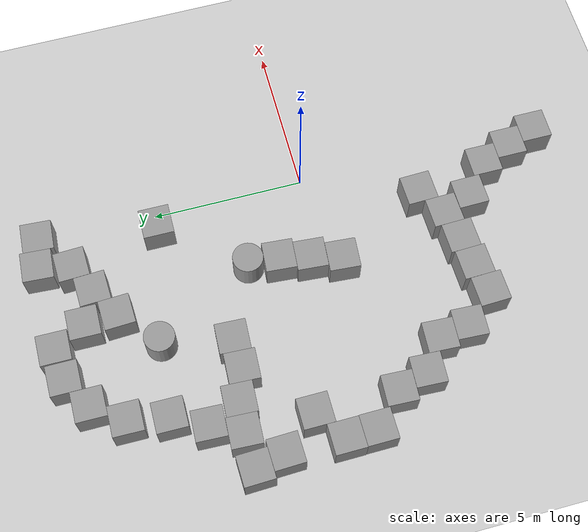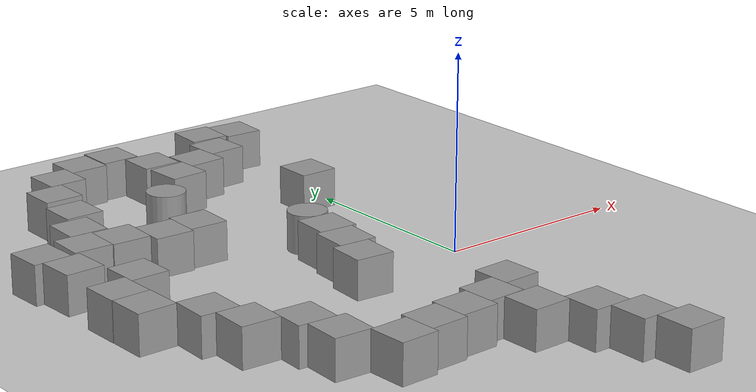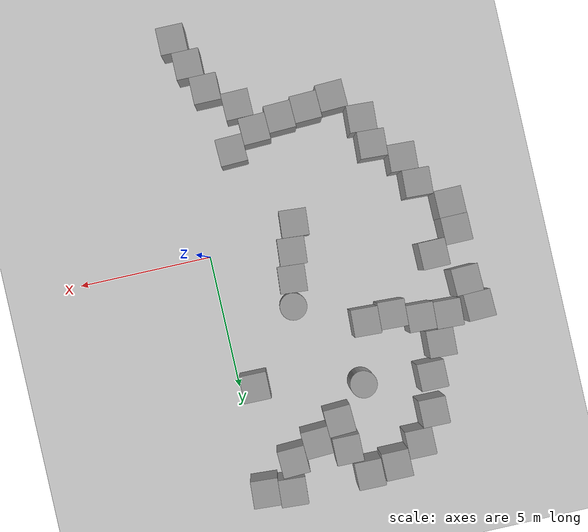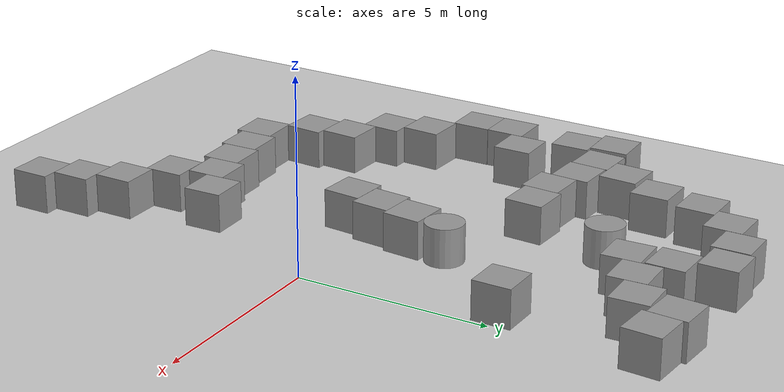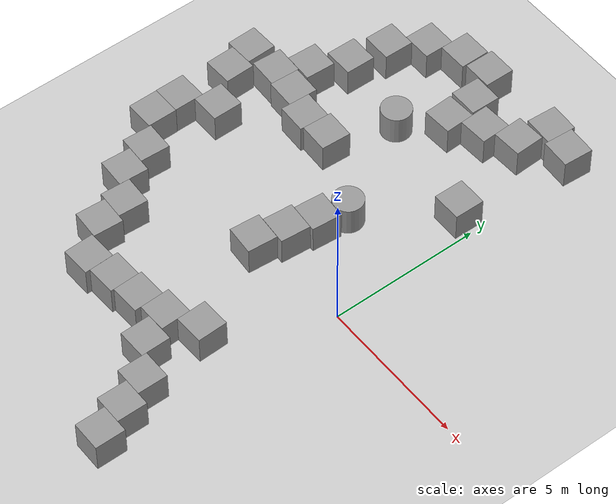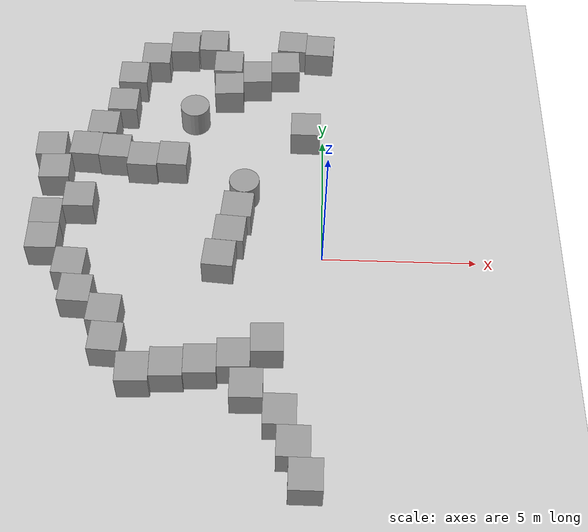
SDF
<sdf version="1.6">
 <world name="default">
  <model name="ground_plane">
   <static>1</static>
   <link name="link">
    <collision name="collision">
     <geometry><plane><normal>0 0 1</normal><size>100 100</size></plane></geometry>
     <surface>
      <contact><collide_bitmask>65535</collide_bitmask></contact>
      <friction><ode><mu>100</mu><mu2>50</mu2></ode></friction>
     </surface>
    </collision>
    <visual name="visual">
     <cast_shadows>0</cast_shadows>
     <geometry><plane><normal>0 0 1</normal><size>100 100</size></plane></geometry>
     <material>
      <script><uri>file://media/materials/scripts/gazebo.material</uri><name>Gazebo/Grey</name></script>
     </material>
    </visual>
   </link>
  </model>
  <model name="unit_cylinder">
   <pose>-2.61932 2.44696 0.499993 -3e-06 4e-06 0.026379</pose>
   <link name="link">
    <inertial>
     <mass>1</mass>
     <inertia><ixx>0.145833</ixx><ixy>0</ixy><ixz>0</ixz><iyy>0.145833</iyy><iyz>0</iyz><izz>0.125</izz></inertia>
    </inertial>
    <collision name="collision">
     <geometry><cylinder><radius>0.5</radius><length>1</length></cylinder></geometry>
    </collision>
    <visual name="visual">
     <geometry><cylinder><radius>0.5</radius><length>1</length></cylinder></geometry>
     <material>
      <script><name>Gazebo/Grey</name><uri>file://media/materials/scripts/gazebo.material</uri></script>
     </material>
    </visual>
   </link>
  </model>
  <model name="unit_cylinder_1">
   <pose>-4.48559 5.76166 0.499994 -3e-06 -1e-06 -0</pose>
   <link name="link">
    <inertial>
     <mass>1</mass>
     <inertia><ixx>0.145833</ixx><ixy>0</ixy><ixz>0</ixz><iyy>0.145833</iyy><iyz>0</iyz><izz>0.125</izz></inertia>
    </inertial>
    <collision name="collision">
     <geometry><cylinder><radius>0.5</radius><length>1</length></cylinder></geometry>
    </collision>
    <visual name="visual">
     <geometry><cylinder><radius>0.5</radius><length>1</length></cylinder></geometry>
     <material>
      <script><name>Gazebo/Grey</name><uri>file://media/materials/scripts/gazebo.material</uri></script>
     </material>
    </visual>
   </link>
  </model>
  <model name="unit_box">
   <pose>-3.305 -0.512108 0.5 0 -0 -0.077037</pose>
   <link name="link">
    <inertial>
     <mass>1</mass>
     <inertia>
      <ixx>0.166667</ixx>
      <ixy>0</ixy>
      <ixz>0</ixz>
      <iyy>0.166667</iyy>
      <iyz>0</iyz>
      <izz>0.166667</izz>
     </inertia>
    </inertial>
    <collision name="collision"><geometry><box><size>1 1 1</size></box></geometry></collision>
    <visual name="visual">
     <geometry><box><size>1 1 1</size></box></geometry>
     <material>
      <script><name>Gazebo/Grey</name><uri>file://media/materials/scripts/gazebo.material</uri></script>
     </material>
    </visual>
   </link>
  </model>
  <model name="unit_box_0">
   <pose>-1.67088 -3.58781 0.499995 -0 1e-05 0.030168</pose>
   <link name="link">
    <inertial>
     <mass>1</mass>
     <inertia>
      <ixx>0.166667</ixx>
      <ixy>0</ixy>
      <ixz>0</ixz>
      <iyy>0.166667</iyy>
      <iyz>0</iyz>
      <izz>0.166667</izz>
     </inertia>
    </inertial>
    <collision name="collision"><geometry><box><size>1 1 1</size></box></geometry></collision>
    <visual name="visual">
     <geometry><box><size>1 1 1</size></box></geometry>
     <material>
      <script><name>Gazebo/Grey</name><uri>file://media/materials/scripts/gazebo.material</uri></script>
     </material>
    </visual>
   </link>
  </model>
  <model name="unit_box_3">
   <pose>-2.65414 -4.15789 0.499995 -1e-05 -0 0.030362</pose>
   <link name="link">
    <inertial>
     <mass>1</mass>
     <inertia>
      <ixx>0.166667</ixx>
      <ixy>0</ixy>
      <ixz>0</ixz>
      <iyy>0.166667</iyy>
      <iyz>0</iyz>
      <izz>0.166667</izz>
     </inertia>
    </inertial>
    <collision name="collision"><geometry><box><size>1 1 1</size></box></geometry></collision>
    <visual name="visual">
     <geometry><box><size>1 1 1</size></box></geometry>
     <material>
      <script><name>Gazebo/Grey</name><uri>file://media/materials/scripts/gazebo.material</uri></script>
     </material>
    </visual>
   </link>
  </model>
  <model name="unit_box_4">
   <pose>-2.2346 -5.1573 0.499995 1e-05 -0 0.013394</pose>
   <link name="link">
    <inertial>
     <mass>1</mass>
     <inertia>
      <ixx>0.166667</ixx>
      <ixy>0</ixy>
      <ixz>0</ixz>
      <iyy>0.166667</iyy>
      <iyz>0</iyz>
      <izz>0.166667</izz>
     </inertia>
    </inertial>
    <collision name="collision"><geometry><box><size>1 1 1</size></box></geometry></collision>
    <visual name="visual">
     <geometry><box><size>1 1 1</size></box></geometry>
     <material>
      <script><name>Gazebo/Grey</name><uri>file://media/materials/scripts/gazebo.material</uri></script>
     </material>
    </visual>
   </link>
  </model>
  <model name="unit_box_5">
   <pose>-1.22904 -5.98442 0.499995 -1e-05 -0 -0.003304</pose>
   <link name="link">
    <inertial>
     <mass>1</mass>
     <inertia>
      <ixx>0.166667</ixx>
      <ixy>0</ixy>
      <ixz>0</ixz>
      <iyy>0.166667</iyy>
      <iyz>0</iyz>
      <izz>0.166667</izz>
     </inertia>
    </inertial>
    <collision name="collision"><geometry><box><size>1 1 1</size></box></geometry></collision>
    <visual name="visual">
     <geometry><box><size>1 1 1</size></box></geometry>
     <material>
      <script><name>Gazebo/Grey</name><uri>file://media/materials/scripts/gazebo.material</uri></script>
     </material>
    </visual>
   </link>
  </model>
  <model name="unit_box_5_clone">
   <pose>-0.809884 -6.98581 0.499995 -1e-05 -0 -0.003304</pose>
   <link name="link">
    <inertial>
     <mass>1</mass>
     <inertia>
      <ixx>0.166667</ixx>
      <ixy>0</ixy>
      <ixz>0</ixz>
      <iyy>0.166667</iyy>
      <iyz>0</iyz>
      <izz>0.166667</izz>
     </inertia>
    </inertial>
    <collision name="collision"><geometry><box><size>1 1 1</size></box></geometry></collision>
    <visual name="visual">
     <geometry><box><size>1 1 1</size></box></geometry>
     <material>
      <script><name>Gazebo/Grey</name><uri>file://media/materials/scripts/gazebo.material</uri></script>
     </material>
    </visual>
   </link>
  </model>
  <model name="unit_box_5_clone_0">
   <pose>-0.445428 -7.98703 0.499995 -1e-05 -0 -0.003317</pose>
   <link name="link">
    <inertial>
     <mass>1</mass>
     <inertia>
      <ixx>0.166667</ixx>
      <ixy>0</ixy>
      <ixz>0</ixz>
      <iyy>0.166667</iyy>
      <iyz>0</iyz>
      <izz>0.166667</izz>
     </inertia>
    </inertial>
    <collision name="collision"><geometry><box><size>1 1 1</size></box></geometry></collision>
    <visual name="visual">
     <geometry><box><size>1 1 1</size></box></geometry>
     <material>
      <script><name>Gazebo/Grey</name><uri>file://media/materials/scripts/gazebo.material</uri></script>
     </material>
    </visual>
   </link>
  </model>
  <model name="unit_box_5_clone_34">
   <pose>-0.146527 8.83779 0.499995 0 1e-05 -0.063294</pose>
   <link name="link">
    <inertial>
     <mass>1</mass>
     <inertia>
      <ixx>0.166667</ixx>
      <ixy>0</ixy>
      <ixz>0</ixz>
      <iyy>0.166667</iyy>
      <iyz>0</iyz>
      <izz>0.166667</izz>
     </inertia>
    </inertial>
    <collision name="collision"><geometry><box><size>1 1 1</size></box></geometry></collision>
    <visual name="visual">
     <geometry><box><size>1 1 1</size></box></geometry>
     <material>
      <script><name>Gazebo/Grey</name><uri>file://media/materials/scripts/gazebo.material</uri></script>
     </material>
    </visual>
   </link>
  </model>
  <model name="unit_box_5_clone_35">
   <pose>-1.13722 9.01639 0.5 -0 -0 -0.063293</pose>
   <link name="link">
    <inertial>
     <mass>1</mass>
     <inertia>
      <ixx>0.166667</ixx>
      <ixy>0</ixy>
      <ixz>0</ixz>
      <iyy>0.166667</iyy>
      <iyz>0</iyz>
      <izz>0.166667</izz>
     </inertia>
    </inertial>
    <collision name="collision"><geometry><box><size>1 1 1</size></box></geometry></collision>
    <visual name="visual">
     <geometry><box><size>1 1 1</size></box></geometry>
     <material>
      <script><name>Gazebo/Grey</name><uri>file://media/materials/scripts/gazebo.material</uri></script>
     </material>
    </visual>
   </link>
  </model>
  <model name="unit_box_5_clone_36">
   <pose>-1.38448 7.9517 0.499995 -0 -1e-05 0.038517</pose>
   <link name="link">
    <inertial>
     <mass>1</mass>
     <inertia>
      <ixx>0.166667</ixx>
      <ixy>0</ixy>
      <ixz>0</ixz>
      <iyy>0.166667</iyy>
      <iyz>0</iyz>
      <izz>0.166667</izz>
     </inertia>
    </inertial>
    <collision name="collision"><geometry><box><size>1 1 1</size></box></geometry></collision>
    <visual name="visual">
     <geometry><box><size>1 1 1</size></box></geometry>
     <material>
      <script><name>Gazebo/Grey</name><uri>file://media/materials/scripts/gazebo.material</uri></script>
     </material>
    </visual>
   </link>
  </model>
  <model name="unit_box_5_clone_37">
   <pose>-3.41344 7.95879 0.499995 0 1e-05 -0.013853</pose>
   <link name="link">
    <inertial>
     <mass>1</mass>
     <inertia>
      <ixx>0.166667</ixx>
      <ixy>0</ixy>
      <ixz>0</ixz>
      <iyy>0.166667</iyy>
      <iyz>0</iyz>
      <izz>0.166667</izz>
     </inertia>
    </inertial>
    <collision name="collision"><geometry><box><size>1 1 1</size></box></geometry></collision>
    <visual name="visual">
     <geometry><box><size>1 1 1</size></box></geometry>
     <material>
      <script><name>Gazebo/Grey</name><uri>file://media/materials/scripts/gazebo.material</uri></script>
     </material>
    </visual>
   </link>
  </model>
  <model name="unit_box_5_clone_38">
   <pose>-4 9 0.499995 0 1e-05 -0.010235</pose>
   <link name="link">
    <inertial>
     <mass>1</mass>
     <inertia>
      <ixx>0.166667</ixx>
      <ixy>0</ixy>
      <ixz>0</ixz>
      <iyy>0.166667</iyy>
      <iyz>0</iyz>
      <izz>0.166667</izz>
     </inertia>
    </inertial>
    <collision name="collision"><geometry><box><size>1 1 1</size></box></geometry></collision>
    <visual name="visual">
     <geometry><box><size>1 1 1</size></box></geometry>
     <material>
      <script><name>Gazebo/Grey</name><uri>file://media/materials/scripts/gazebo.material</uri></script>
     </material>
    </visual>
   </link>
  </model>
  <model name="unit_box_5_clone_39">
   <pose>-5.0351 8.88465 0.499995 -1e-05 -0 -0.000593</pose>
   <link name="link">
    <inertial>
     <mass>1</mass>
     <inertia>
      <ixx>0.166667</ixx>
      <ixy>0</ixy>
      <ixz>0</ixz>
      <iyy>0.166667</iyy>
      <iyz>0</iyz>
      <izz>0.166667</izz>
     </inertia>
    </inertial>
    <collision name="collision"><geometry><box><size>1 1 1</size></box></geometry></collision>
    <visual name="visual">
     <geometry><box><size>1 1 1</size></box></geometry>
     <material>
      <script><name>Gazebo/Grey</name><uri>file://media/materials/scripts/gazebo.material</uri></script>
     </material>
    </visual>
   </link>
  </model>
  <model name="unit_box_5_clone_40">
   <pose>-2.3666 7.46249 0.499995 1e-05 -0 0.042615</pose>
   <link name="link">
    <inertial>
     <mass>1</mass>
     <inertia>
      <ixx>0.166667</ixx>
      <ixy>0</ixy>
      <ixz>0</ixz>
      <iyy>0.166667</iyy>
      <iyz>0</iyz>
      <izz>0.166667</izz>
     </inertia>
    </inertial>
    <collision name="collision"><geometry><box><size>1 1 1</size></box></geometry></collision>
    <visual name="visual">
     <geometry><box><size>1 1 1</size></box></geometry>
     <material>
      <script><name>Gazebo/Grey</name><uri>file://media/materials/scripts/gazebo.material</uri></script>
     </material>
    </visual>
   </link>
  </model>
  <model name="unit_box_5_clone_41">
   <pose>-6.0388 8.29597 0.499995 -1e-05 0 -0.007253</pose>
   <link name="link">
    <inertial>
     <mass>1</mass>
     <inertia>
      <ixx>0.166667</ixx>
      <ixy>0</ixy>
      <ixz>0</ixz>
      <iyy>0.166667</iyy>
      <iyz>0</iyz>
      <izz>0.166667</izz>
     </inertia>
    </inertial>
    <collision name="collision"><geometry><box><size>1 1 1</size></box></geometry></collision>
    <visual name="visual">
     <geometry><box><size>1 1 1</size></box></geometry>
     <material>
      <script><name>Gazebo/Grey</name><uri>file://media/materials/scripts/gazebo.material</uri></script>
     </material>
    </visual>
   </link>
  </model>
  <model name="unit_box_5_clone_42">
   <pose>-6.76491 7.30246 0.499995 -1e-05 -0 -0.01302</pose>
   <link name="link">
    <inertial>
     <mass>1</mass>
     <inertia>
      <ixx>0.166667</ixx>
      <ixy>0</ixy>
      <ixz>0</ixz>
      <iyy>0.166667</iyy>
      <iyz>0</iyz>
      <izz>0.166667</izz>
     </inertia>
    </inertial>
    <collision name="collision"><geometry><box><size>1 1 1</size></box></geometry></collision>
    <visual name="visual">
     <geometry><box><size>1 1 1</size></box></geometry>
     <material>
      <script><name>Gazebo/Grey</name><uri>file://media/materials/scripts/gazebo.material</uri></script>
     </material>
    </visual>
   </link>
  </model>
  <model name="unit_box_5_clone_43">
   <pose>-7 6 0.499995 -1e-05 -0 -0.010235</pose>
   <link name="link">
    <inertial>
     <mass>1</mass>
     <inertia>
      <ixx>0.166667</ixx>
      <ixy>0</ixy>
      <ixz>0</ixz>
      <iyy>0.166667</iyy>
      <iyz>0</iyz>
      <izz>0.166667</izz>
     </inertia>
    </inertial>
    <collision name="collision"><geometry><box><size>1 1 1</size></box></geometry></collision>
    <visual name="visual">
     <geometry><box><size>1 1 1</size></box></geometry>
     <material>
      <script><name>Gazebo/Grey</name><uri>file://media/materials/scripts/gazebo.material</uri></script>
     </material>
    </visual>
   </link>
  </model>
  <model name="unit_box_5_clone_44">
   <pose>-3.64764 -4.39036 0.499995 1e-05 -0 0.030698</pose>
   <link name="link">
    <inertial>
     <mass>1</mass>
     <inertia>
      <ixx>0.166667</ixx>
      <ixy>0</ixy>
      <ixz>0</ixz>
      <iyy>0.166667</iyy>
      <iyz>0</iyz>
      <izz>0.166667</izz>
     </inertia>
    </inertial>
    <collision name="collision"><geometry><box><size>1 1 1</size></box></geometry></collision>
    <visual name="visual">
     <geometry><box><size>1 1 1</size></box></geometry>
     <material>
      <script><name>Gazebo/Grey</name><uri>file://media/materials/scripts/gazebo.material</uri></script>
     </material>
    </visual>
   </link>
  </model>
  <model name="unit_box_5_clone_45">
   <pose>-4.64418 -4.52608 0.499995 -0 1e-05 0.03128</pose>
   <link name="link">
    <inertial>
     <mass>1</mass>
     <inertia>
      <ixx>0.166667</ixx>
      <ixy>0</ixy>
      <ixz>0</ixz>
      <iyy>0.166667</iyy>
      <iyz>0</iyz>
      <izz>0.166667</izz>
     </inertia>
    </inertial>
    <collision name="collision"><geometry><box><size>1 1 1</size></box></geometry></collision>
    <visual name="visual">
     <geometry><box><size>1 1 1</size></box></geometry>
     <material>
      <script><name>Gazebo/Grey</name><uri>file://media/materials/scripts/gazebo.material</uri></script>
     </material>
    </visual>
   </link>
  </model>
  <model name="unit_box_5_clone_46">
   <pose>-5.63962 -4.71633 0.499995 0 1e-05 0.033913</pose>
   <link name="link">
    <inertial>
     <mass>1</mass>
     <inertia>
      <ixx>0.166667</ixx>
      <ixy>0</ixy>
      <ixz>0</ixz>
      <iyy>0.166667</iyy>
      <iyz>0</iyz>
      <izz>0.166667</izz>
     </inertia>
    </inertial>
    <collision name="collision"><geometry><box><size>1 1 1</size></box></geometry></collision>
    <visual name="visual">
     <geometry><box><size>1 1 1</size></box></geometry>
     <material>
      <script><name>Gazebo/Grey</name><uri>file://media/materials/scripts/gazebo.material</uri></script>
     </material>
    </visual>
   </link>
  </model>
  <model name="unit_box_5_clone_47">
   <pose>-6.54334 -3.70521 0.499995 0 1e-05 -0.052209</pose>
   <link name="link">
    <inertial>
     <mass>1</mass>
     <inertia>
      <ixx>0.166667</ixx>
      <ixy>0</ixy>
      <ixz>0</ixz>
      <iyy>0.166667</iyy>
      <iyz>0</iyz>
      <izz>0.166667</izz>
     </inertia>
    </inertial>
    <collision name="collision"><geometry><box><size>1 1 1</size></box></geometry></collision>
    <visual name="visual">
     <geometry><box><size>1 1 1</size></box></geometry>
     <material>
      <script><name>Gazebo/Grey</name><uri>file://media/materials/scripts/gazebo.material</uri></script>
     </material>
    </visual>
   </link>
  </model>
  <model name="unit_box_5_clone_48">
   <pose>-6.71244 -2.695 0.499995 0 1e-05 -0.052214</pose>
   <link name="link">
    <inertial>
     <mass>1</mass>
     <inertia>
      <ixx>0.166667</ixx>
      <ixy>0</ixy>
      <ixz>0</ixz>
      <iyy>0.166667</iyy>
      <iyz>0</iyz>
      <izz>0.166667</izz>
     </inertia>
    </inertial>
    <collision name="collision"><geometry><box><size>1 1 1</size></box></geometry></collision>
    <visual name="visual">
     <geometry><box><size>1 1 1</size></box></geometry>
     <material>
      <script><name>Gazebo/Grey</name><uri>file://media/materials/scripts/gazebo.material</uri></script>
     </material>
    </visual>
   </link>
  </model>
  <model name="unit_box_5_clone_49">
   <pose>-7.67929 -1.98572 0.499995 -0 1e-05 -0.047095</pose>
   <link name="link">
    <inertial>
     <mass>1</mass>
     <inertia>
      <ixx>0.166667</ixx>
      <ixy>0</ixy>
      <ixz>0</ixz>
      <iyy>0.166667</iyy>
      <iyz>0</iyz>
      <izz>0.166667</izz>
     </inertia>
    </inertial>
    <collision name="collision"><geometry><box><size>1 1 1</size></box></geometry></collision>
    <visual name="visual">
     <geometry><box><size>1 1 1</size></box></geometry>
     <material>
      <script><name>Gazebo/Grey</name><uri>file://media/materials/scripts/gazebo.material</uri></script>
     </material>
    </visual>
   </link>
  </model>
  <model name="unit_box_5_clone_50">
   <pose>-8.00686 -0.968851 0.499995 -0 -1e-05 -0.045101</pose>
   <link name="link">
    <inertial>
     <mass>1</mass>
     <inertia>
      <ixx>0.166667</ixx>
      <ixy>0</ixy>
      <ixz>0</ixz>
      <iyy>0.166667</iyy>
      <iyz>0</iyz>
      <izz>0.166667</izz>
     </inertia>
    </inertial>
    <collision name="collision"><geometry><box><size>1 1 1</size></box></geometry></collision>
    <visual name="visual">
     <geometry><box><size>1 1 1</size></box></geometry>
     <material>
      <script><name>Gazebo/Grey</name><uri>file://media/materials/scripts/gazebo.material</uri></script>
     </material>
    </visual>
   </link>
  </model>
  <model name="unit_box_5_clone_51">
   <pose>-9.00257 -0.00495 0.499995 1e-05 -0 0.005497</pose>
   <link name="link">
    <inertial>
     <mass>1</mass>
     <inertia>
      <ixx>0.166667</ixx>
      <ixy>0</ixy>
      <ixz>0</ixz>
      <iyy>0.166667</iyy>
      <iyz>0</iyz>
      <izz>0.166667</izz>
     </inertia>
    </inertial>
    <collision name="collision"><geometry><box><size>1 1 1</size></box></geometry></collision>
    <visual name="visual">
     <geometry><box><size>1 1 1</size></box></geometry>
     <material>
      <script><name>Gazebo/Grey</name><uri>file://media/materials/scripts/gazebo.material</uri></script>
     </material>
    </visual>
   </link>
  </model>
  <model name="unit_box_5_clone_52">
   <pose>-8.02199 1.70668 0.499995 1e-05 -0 0.00541</pose>
   <link name="link">
    <inertial>
     <mass>1</mass>
     <inertia>
      <ixx>0.166667</ixx>
      <ixy>0</ixy>
      <ixz>0</ixz>
      <iyy>0.166667</iyy>
      <iyz>0</iyz>
      <izz>0.166667</izz>
     </inertia>
    </inertial>
    <collision name="collision"><geometry><box><size>1 1 1</size></box></geometry></collision>
    <visual name="visual">
     <geometry><box><size>1 1 1</size></box></geometry>
     <material>
      <script><name>Gazebo/Grey</name><uri>file://media/materials/scripts/gazebo.material</uri></script>
     </material>
    </visual>
   </link>
  </model>
  <model name="unit_box_5_clone_53">
   <pose>-9.01825 0.995216 0.499995 0 1e-05 0.005385</pose>
   <link name="link">
    <inertial>
     <mass>1</mass>
     <inertia>
      <ixx>0.166667</ixx>
      <ixy>0</ixy>
      <ixz>0</ixz>
      <iyy>0.166667</iyy>
      <iyz>0</iyz>
      <izz>0.166667</izz>
     </inertia>
    </inertial>
    <collision name="collision"><geometry><box><size>1 1 1</size></box></geometry></collision>
    <visual name="visual">
     <geometry><box><size>1 1 1</size></box></geometry>
     <material>
      <script><name>Gazebo/Grey</name><uri>file://media/materials/scripts/gazebo.material</uri></script>
     </material>
    </visual>
   </link>
  </model>
  <model name="unit_box_5_clone_54">
   <pose>-8.98593 2.88655 0.499995 0 -1e-05 0.02963</pose>
   <link name="link">
    <inertial>
     <mass>1</mass>
     <inertia>
      <ixx>0.166667</ixx>
      <ixy>0</ixy>
      <ixz>0</ixz>
      <iyy>0.166667</iyy>
      <iyz>0</iyz>
      <izz>0.166667</izz>
     </inertia>
    </inertial>
    <collision name="collision"><geometry><box><size>1 1 1</size></box></geometry></collision>
    <visual name="visual">
     <geometry><box><size>1 1 1</size></box></geometry>
     <material>
      <script><name>Gazebo/Grey</name><uri>file://media/materials/scripts/gazebo.material</uri></script>
     </material>
    </visual>
   </link>
  </model>
  <model name="unit_box_5_clone_55">
   <pose>-8.06044 3.93073 0.499995 0 1e-05 -0.047137</pose>
   <link name="link">
    <inertial>
     <mass>1</mass>
     <inertia>
      <ixx>0.166667</ixx>
      <ixy>0</ixy>
      <ixz>0</ixz>
      <iyy>0.166667</iyy>
      <iyz>0</iyz>
      <izz>0.166667</izz>
     </inertia>
    </inertial>
    <collision name="collision"><geometry><box><size>1 1 1</size></box></geometry></collision>
    <visual name="visual">
     <geometry><box><size>1 1 1</size></box></geometry>
     <material>
      <script><name>Gazebo/Grey</name><uri>file://media/materials/scripts/gazebo.material</uri></script>
     </material>
    </visual>
   </link>
  </model>
  <model name="unit_box_5_clone_56">
   <pose>-7.57188 4.91165 0.499995 0 1e-05 -0.042014</pose>
   <link name="link">
    <inertial>
     <mass>1</mass>
     <inertia>
      <ixx>0.166667</ixx>
      <ixy>0</ixy>
      <ixz>0</ixz>
      <iyy>0.166667</iyy>
      <iyz>0</iyz>
      <izz>0.166667</izz>
     </inertia>
    </inertial>
    <collision name="collision"><geometry><box><size>1 1 1</size></box></geometry></collision>
    <visual name="visual">
     <geometry><box><size>1 1 1</size></box></geometry>
     <material>
      <script><name>Gazebo/Grey</name><uri>file://media/materials/scripts/gazebo.material</uri></script>
     </material>
    </visual>
   </link>
  </model>
  <model name="unit_box_5_clone_57">
   <pose>-9.22661 3.88029 0.499995 0 -1e-05 0.029635</pose>
   <link name="link">
    <inertial>
     <mass>1</mass>
     <inertia>
      <ixx>0.166667</ixx>
      <ixy>0</ixy>
      <ixz>0</ixz>
      <iyy>0.166667</iyy>
      <iyz>0</iyz>
      <izz>0.166667</izz>
     </inertia>
    </inertial>
    <collision name="collision"><geometry><box><size>1 1 1</size></box></geometry></collision>
    <visual name="visual">
     <geometry><box><size>1 1 1</size></box></geometry>
     <material>
      <script><name>Gazebo/Grey</name><uri>file://media/materials/scripts/gazebo.material</uri></script>
     </material>
    </visual>
   </link>
  </model>
  <model name="unit_box_5_clone_58">
   <pose>-3.34231 6.87111 0.499995 0 -1e-05 0.042926</pose>
   <link name="link">
    <inertial>
     <mass>1</mass>
     <inertia>
      <ixx>0.166667</ixx>
      <ixy>0</ixy>
      <ixz>0</ixz>
      <iyy>0.166667</iyy>
      <iyz>0</iyz>
      <izz>0.166667</izz>
     </inertia>
    </inertial>
    <collision name="collision"><geometry><box><size>1 1 1</size></box></geometry></collision>
    <visual name="visual">
     <geometry><box><size>1 1 1</size></box></geometry>
     <material>
      <script><name>Gazebo/Grey</name><uri>file://media/materials/scripts/gazebo.material</uri></script>
     </material>
    </visual>
   </link>
  </model>
  <model name="unit_box_5_clone_59">
   <pose>-7.06346 3.84279 0.499995 0 -1e-05 -0.047136</pose>
   <link name="link">
    <inertial>
     <mass>1</mass>
     <inertia>
      <ixx>0.166667</ixx>
      <ixy>0</ixy>
      <ixz>0</ixz>
      <iyy>0.166667</iyy>
      <iyz>0</iyz>
      <izz>0.166667</izz>
     </inertia>
    </inertial>
    <collision name="collision"><geometry><box><size>1 1 1</size></box></geometry></collision>
    <visual name="visual">
     <geometry><box><size>1 1 1</size></box></geometry>
     <material>
      <script><name>Gazebo/Grey</name><uri>file://media/materials/scripts/gazebo.material</uri></script>
     </material>
    </visual>
   </link>
  </model>
  <model name="unit_box_5_clone_60">
   <pose>-6.07809 3.50823 0.499995 -1e-05 -0 -0.047126</pose>
   <link name="link">
    <inertial>
     <mass>1</mass>
     <inertia>
      <ixx>0.166667</ixx>
      <ixy>0</ixy>
      <ixz>0</ixz>
      <iyy>0.166667</iyy>
      <iyz>0</iyz>
      <izz>0.166667</izz>
     </inertia>
    </inertial>
    <collision name="collision"><geometry><box><size>1 1 1</size></box></geometry></collision>
    <visual name="visual">
     <geometry><box><size>1 1 1</size></box></geometry>
     <material>
      <script><name>Gazebo/Grey</name><uri>file://media/materials/scripts/gazebo.material</uri></script>
     </material>
    </visual>
   </link>
  </model>
  <model name="unit_box_5_clone_61">
   <pose>-5.07449 3.56071 0.499995 -1e-05 -0 -0.047123</pose>
   <link name="link">
    <inertial>
     <mass>1</mass>
     <inertia>
      <ixx>0.166667</ixx>
      <ixy>0</ixy>
      <ixz>0</ixz>
      <iyy>0.166667</iyy>
      <iyz>0</iyz>
      <izz>0.166667</izz>
     </inertia>
    </inertial>
    <collision name="collision"><geometry><box><size>1 1 1</size></box></geometry></collision>
    <visual name="visual">
     <geometry><box><size>1 1 1</size></box></geometry>
     <material>
      <script><name>Gazebo/Grey</name><uri>file://media/materials/scripts/gazebo.material</uri></script>
     </material>
    </visual>
   </link>
  </model>
  <model name="unit_box_5_clone_62">
   <pose>-3.01386 0.470794 0.499999 3e-06 -0 -0.07841</pose>
   <link name="link">
    <inertial>
     <mass>1</mass>
     <inertia>
      <ixx>0.166667</ixx>
      <ixy>0</ixy>
      <ixz>0</ixz>
      <iyy>0.166667</iyy>
      <iyz>0</iyz>
      <izz>0.166667</izz>
     </inertia>
    </inertial>
    <collision name="collision"><geometry><box><size>1 1 1</size></box></geometry></collision>
    <visual name="visual">
     <geometry><box><size>1 1 1</size></box></geometry>
     <material>
      <script><name>Gazebo/Grey</name><uri>file://media/materials/scripts/gazebo.material</uri></script>
     </material>
    </visual>
   </link>
  </model>
  <model name="unit_box_5_clone_63">
   <pose>-2.8032 1.45744 0.499995 1e-05 0 -0.078694</pose>
   <link name="link">
    <inertial>
     <mass>1</mass>
     <inertia>
      <ixx>0.166667</ixx>
      <ixy>0</ixy>
      <ixz>0</ixz>
      <iyy>0.166667</iyy>
      <iyz>0</iyz>
      <izz>0.166667</izz>
     </inertia>
    </inertial>
    <collision name="collision"><geometry><box><size>1 1 1</size></box></geometry></collision>
    <visual name="visual">
     <geometry><box><size>1 1 1</size></box></geometry>
     <material>
      <script><name>Gazebo/Grey</name><uri>file://media/materials/scripts/gazebo.material</uri></script>
     </material>
    </visual>
   </link>
  </model>
  <model name="unit_box_5_clone_67">
   <pose>-0.613325 5.00863 0.5 -0 -0 -0.010235</pose>
   <link name="link">
    <inertial>
     <mass>1</mass>
     <inertia>
      <ixx>0.166667</ixx>
      <ixy>0</ixy>
      <ixz>0</ixz>
      <iyy>0.166667</iyy>
      <iyz>0</iyz>
      <izz>0.166667</izz>
     </inertia>
    </inertial>
    <collision name="collision"><geometry><box><size>1 1 1</size></box></geometry></collision>
    <visual name="visual">
     <geometry><box><size>1 1 1</size></box></geometry>
     <material>
      <script><name>Gazebo/Grey</name><uri>file://media/materials/scripts/gazebo.material</uri></script>
     </material>
    </visual>
   </link>
  </model>
 </world>
</sdf>
